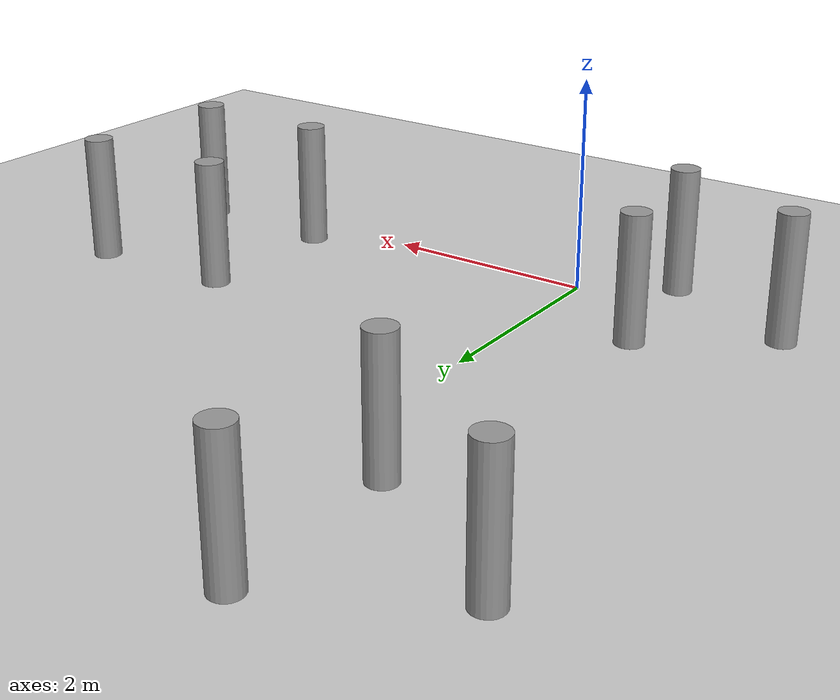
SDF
<sdf version="1.7">
 <world name="default">
  <light name="sun" type="directional">
   <pose>0 0 10 0 -0 0</pose>
   <diffuse>0.8 0.8 0.8 1</diffuse>
   <specular>0.2 0.2 0.2 1</specular>
   <attenuation>
    <range>1000</range>
    <constant>0.9</constant>
    <linear>0.01</linear>
    <quadratic>0.001</quadratic>
   </attenuation>
   <direction>-0.5 0.1 -0.9</direction>
   <spot><inner_angle>0</inner_angle><outer_angle>0</outer_angle><falloff>0</falloff></spot>
  </light>
  <model name="ground_plane">
   <static>1</static>
   <link name="link">
    <collision name="collision">
     <geometry><plane><normal>0 0 1</normal><size>100 100</size></plane></geometry>
     <surface>
      <contact><collide_bitmask>65535</collide_bitmask></contact>
      <friction><ode><mu>100</mu><mu2>50</mu2></ode></friction>
     </surface>
    </collision>
    <visual name="visual">
     <cast_shadows>0</cast_shadows>
     <geometry><plane><normal>0 0 1</normal><size>100 100</size></plane></geometry>
     <material>
      <script><uri>file://media/materials/scripts/gazebo.material</uri><name>Gazebo/Grey</name></script>
     </material>
    </visual>
   </link>
  </model>
  <gravity>0 0 -9.8</gravity>
  <magnetic_field>6e-06 2.3e-05 -4.2e-05</magnetic_field>
  <atmosphere type="adiabatic"/>
  <physics type="ode">
   <max_step_size>0.001</max_step_size>
   <real_time_factor>1</real_time_factor>
   <real_time_update_rate>1000</real_time_update_rate>
  </physics>
  <scene><ambient>0.4 0.4 0.4 1</ambient><background>0.7 0.7 0.7 1</background><shadows>1</shadows></scene>
  <spherical_coordinates>
   <surface_model>EARTH_WGS84</surface_model>
   <latitude_deg>0</latitude_deg>
   <longitude_deg>0</longitude_deg>
   <elevation>0</elevation>
   <heading_deg>0</heading_deg>
  </spherical_coordinates>
  <model name="smaller_cylinder">
   <model name="smaller_cylinder_1">
    <link name="link">
     <inertial>
      <mass>0.0872829</mass>
      <inertia>
       <ixx>0.0108064</ixx>
       <ixy>0</ixy>
       <ixz>0</ixz>
       <iyy>0.0108064</iyy>
       <iyz>0</iyz>
       <izz>0.000796093</izz>
      </inertia>
     </inertial>
     <visual name="visual">
      <geometry><cylinder><radius>0.135062</radius><length>1.19624</length></cylinder></geometry>
      <material>
       <script><name>Gazebo/Grey</name><uri>file://media/materials/scripts/gazebo.material</uri></script>
       <shader type="pixel"/>
      </material>
     </visual>
     <collision name="collision">
      <geometry><cylinder><radius>0.135062</radius><length>1.19624</length></cylinder></geometry>
      <surface>
       <friction>
        <ode><mu>1</mu><mu2>1</mu2><fdir1>0 0 0</fdir1><slip1>0</slip1><slip2>0</slip2></ode>
        <torsional>
         <coefficient>1</coefficient>
         <patch_radius>0</patch_radius>
         <surface_radius>0</surface_radius>
         <use_patch_radius>1</use_patch_radius>
         <ode><slip>0</slip></ode>
        </torsional>
       </friction>
       <bounce><restitution_coefficient>0</restitution_coefficient><threshold>1e+06</threshold></bounce>
       <contact>
        <collide_without_contact>0</collide_without_contact>
        <collide_without_contact_bitmask>1</collide_without_contact_bitmask>
        <collide_bitmask>1</collide_bitmask>
        <ode>
         <soft_cfm>0</soft_cfm>
         <soft_erp>0.2</soft_erp>
         <kp>1e+13</kp>
         <kd>1</kd>
         <max_vel>0.01</max_vel>
         <min_depth>0</min_depth>
        </ode>
        <bullet>
         <split_impulse>1</split_impulse>
         <split_impulse_penetration_threshold>-0.01</split_impulse_penetration_threshold>
         <soft_cfm>0</soft_cfm>
         <soft_erp>0.2</soft_erp>
         <kp>1e+13</kp>
         <kd>1</kd>
        </bullet>
       </contact>
      </surface>
     </collision>
    </link>
    <static>1</static>
    <pose>0.044198 -0.101528 0 0 -0 0</pose>
   </model>
   <static>1</static>
   <allow_auto_disable>0</allow_auto_disable>
   <pose>-0.834606 -0.386835 0.598119 0 -0 0</pose>
  </model>
  <model name="smaller_cylinder_0">
   <model name="smaller_cylinder_1">
    <link name="link">
     <inertial>
      <mass>0.0872829</mass>
      <inertia>
       <ixx>0.0108064</ixx>
       <ixy>0</ixy>
       <ixz>0</ixz>
       <iyy>0.0108064</iyy>
       <iyz>0</iyz>
       <izz>0.000796093</izz>
      </inertia>
     </inertial>
     <visual name="visual">
      <geometry><cylinder><radius>0.135062</radius><length>1.19624</length></cylinder></geometry>
      <material>
       <script><name>Gazebo/Grey</name><uri>file://media/materials/scripts/gazebo.material</uri></script>
       <shader type="pixel"/>
      </material>
     </visual>
     <collision name="collision">
      <geometry><cylinder><radius>0.135062</radius><length>1.19624</length></cylinder></geometry>
      <surface>
       <friction>
        <ode><mu>1</mu><mu2>1</mu2><fdir1>0 0 0</fdir1><slip1>0</slip1><slip2>0</slip2></ode>
        <torsional>
         <coefficient>1</coefficient>
         <patch_radius>0</patch_radius>
         <surface_radius>0</surface_radius>
         <use_patch_radius>1</use_patch_radius>
         <ode><slip>0</slip></ode>
        </torsional>
       </friction>
       <bounce><restitution_coefficient>0</restitution_coefficient><threshold>1e+06</threshold></bounce>
       <contact>
        <collide_without_contact>0</collide_without_contact>
        <collide_without_contact_bitmask>1</collide_without_contact_bitmask>
        <collide_bitmask>1</collide_bitmask>
        <ode>
         <soft_cfm>0</soft_cfm>
         <soft_erp>0.2</soft_erp>
         <kp>1e+13</kp>
         <kd>1</kd>
         <max_vel>0.01</max_vel>
         <min_depth>0</min_depth>
        </ode>
        <bullet>
         <split_impulse>1</split_impulse>
         <split_impulse_penetration_threshold>-0.01</split_impulse_penetration_threshold>
         <soft_cfm>0</soft_cfm>
         <soft_erp>0.2</soft_erp>
         <kp>1e+13</kp>
         <kd>1</kd>
        </bullet>
       </contact>
      </surface>
     </collision>
    </link>
    <static>1</static>
    <pose>0.044198 -0.101528 0 0 -0 0</pose>
   </model>
   <static>1</static>
   <allow_auto_disable>0</allow_auto_disable>
   <pose>-1.00971 0.92644 0.598112 0 -0 0</pose>
  </model>
  <model name="smaller_cylinder_2">
   <model name="smaller_cylinder_1">
    <link name="link">
     <inertial>
      <mass>0.0872829</mass>
      <inertia>
       <ixx>0.0108064</ixx>
       <ixy>0</ixy>
       <ixz>0</ixz>
       <iyy>0.0108064</iyy>
       <iyz>0</iyz>
       <izz>0.000796093</izz>
      </inertia>
     </inertial>
     <visual name="visual">
      <geometry><cylinder><radius>0.135062</radius><length>1.19624</length></cylinder></geometry>
      <material>
       <script><name>Gazebo/Grey</name><uri>file://media/materials/scripts/gazebo.material</uri></script>
       <shader type="pixel"/>
      </material>
     </visual>
     <collision name="collision">
      <geometry><cylinder><radius>0.135062</radius><length>1.19624</length></cylinder></geometry>
      <surface>
       <friction>
        <ode><mu>1</mu><mu2>1</mu2><fdir1>0 0 0</fdir1><slip1>0</slip1><slip2>0</slip2></ode>
        <torsional>
         <coefficient>1</coefficient>
         <patch_radius>0</patch_radius>
         <surface_radius>0</surface_radius>
         <use_patch_radius>1</use_patch_radius>
         <ode><slip>0</slip></ode>
        </torsional>
       </friction>
       <bounce><restitution_coefficient>0</restitution_coefficient><threshold>1e+06</threshold></bounce>
       <contact>
        <collide_without_contact>0</collide_without_contact>
        <collide_without_contact_bitmask>1</collide_without_contact_bitmask>
        <collide_bitmask>1</collide_bitmask>
        <ode>
         <soft_cfm>0</soft_cfm>
         <soft_erp>0.2</soft_erp>
         <kp>1e+13</kp>
         <kd>1</kd>
         <max_vel>0.01</max_vel>
         <min_depth>0</min_depth>
        </ode>
        <bullet>
         <split_impulse>1</split_impulse>
         <split_impulse_penetration_threshold>-0.01</split_impulse_penetration_threshold>
         <soft_cfm>0</soft_cfm>
         <soft_erp>0.2</soft_erp>
         <kp>1e+13</kp>
         <kd>1</kd>
        </bullet>
       </contact>
      </surface>
     </collision>
    </link>
    <static>1</static>
    <pose>0.044198 -0.101528 0 0 -0 0</pose>
   </model>
   <static>1</static>
   <allow_auto_disable>0</allow_auto_disable>
   <pose>-2.07335 0.175208 0.598119 0 -0 0</pose>
  </model>
  <model name="smaller_cylinder_3">
   <model name="smaller_cylinder_1">
    <link name="link">
     <inertial>
      <mass>0.0872829</mass>
      <inertia>
       <ixx>0.0108064</ixx>
       <ixy>0</ixy>
       <ixz>0</ixz>
       <iyy>0.0108064</iyy>
       <iyz>0</iyz>
       <izz>0.000796093</izz>
      </inertia>
     </inertial>
     <visual name="visual">
      <geometry><cylinder><radius>0.135062</radius><length>1.19624</length></cylinder></geometry>
      <material>
       <script><name>Gazebo/Grey</name><uri>file://media/materials/scripts/gazebo.material</uri></script>
       <shader type="pixel"/>
      </material>
     </visual>
     <collision name="collision">
      <geometry><cylinder><radius>0.135062</radius><length>1.19624</length></cylinder></geometry>
      <surface>
       <friction>
        <ode><mu>1</mu><mu2>1</mu2><fdir1>0 0 0</fdir1><slip1>0</slip1><slip2>0</slip2></ode>
        <torsional>
         <coefficient>1</coefficient>
         <patch_radius>0</patch_radius>
         <surface_radius>0</surface_radius>
         <use_patch_radius>1</use_patch_radius>
         <ode><slip>0</slip></ode>
        </torsional>
       </friction>
       <bounce><restitution_coefficient>0</restitution_coefficient><threshold>1e+06</threshold></bounce>
       <contact>
        <collide_without_contact>0</collide_without_contact>
        <collide_without_contact_bitmask>1</collide_without_contact_bitmask>
        <collide_bitmask>1</collide_bitmask>
        <ode>
         <soft_cfm>0</soft_cfm>
         <soft_erp>0.2</soft_erp>
         <kp>1e+13</kp>
         <kd>1</kd>
         <max_vel>0.01</max_vel>
         <min_depth>0</min_depth>
        </ode>
        <bullet>
         <split_impulse>1</split_impulse>
         <split_impulse_penetration_threshold>-0.01</split_impulse_penetration_threshold>
         <soft_cfm>0</soft_cfm>
         <soft_erp>0.2</soft_erp>
         <kp>1e+13</kp>
         <kd>1</kd>
        </bullet>
       </contact>
      </surface>
     </collision>
    </link>
    <static>1</static>
    <pose>0.044198 -0.101528 0 0 -0 0</pose>
   </model>
   <static>1</static>
   <allow_auto_disable>0</allow_auto_disable>
   <pose>-0.687575 5.64178 0.598119 0 -0 0</pose>
  </model>
  <model name="smaller_cylinder_4">
   <model name="smaller_cylinder_1">
    <link name="link">
     <inertial>
      <mass>0.0872829</mass>
      <inertia>
       <ixx>0.0108064</ixx>
       <ixy>0</ixy>
       <ixz>0</ixz>
       <iyy>0.0108064</iyy>
       <iyz>0</iyz>
       <izz>0.000796093</izz>
      </inertia>
     </inertial>
     <visual name="visual">
      <geometry><cylinder><radius>0.135062</radius><length>1.19624</length></cylinder></geometry>
      <material>
       <script><name>Gazebo/Grey</name><uri>file://media/materials/scripts/gazebo.material</uri></script>
       <shader type="pixel"/>
      </material>
     </visual>
     <collision name="collision">
      <geometry><cylinder><radius>0.135062</radius><length>1.19624</length></cylinder></geometry>
      <surface>
       <friction>
        <ode><mu>1</mu><mu2>1</mu2><fdir1>0 0 0</fdir1><slip1>0</slip1><slip2>0</slip2></ode>
        <torsional>
         <coefficient>1</coefficient>
         <patch_radius>0</patch_radius>
         <surface_radius>0</surface_radius>
         <use_patch_radius>1</use_patch_radius>
         <ode><slip>0</slip></ode>
        </torsional>
       </friction>
       <bounce><restitution_coefficient>0</restitution_coefficient><threshold>1e+06</threshold></bounce>
       <contact>
        <collide_without_contact>0</collide_without_contact>
        <collide_without_contact_bitmask>1</collide_without_contact_bitmask>
        <collide_bitmask>1</collide_bitmask>
        <ode>
         <soft_cfm>0</soft_cfm>
         <soft_erp>0.2</soft_erp>
         <kp>1e+13</kp>
         <kd>1</kd>
         <max_vel>0.01</max_vel>
         <min_depth>0</min_depth>
        </ode>
        <bullet>
         <split_impulse>1</split_impulse>
         <split_impulse_penetration_threshold>-0.01</split_impulse_penetration_threshold>
         <soft_cfm>0</soft_cfm>
         <soft_erp>0.2</soft_erp>
         <kp>1e+13</kp>
         <kd>1</kd>
        </bullet>
       </contact>
      </surface>
     </collision>
    </link>
    <static>1</static>
    <pose>0.044198 -0.101528 0 0 -0 0</pose>
   </model>
   <static>1</static>
   <allow_auto_disable>0</allow_auto_disable>
   <pose>-0.675037 4.01863 0.598119 0 -0 0</pose>
  </model>
  <model name="smaller_cylinder_5">
   <model name="smaller_cylinder_1">
    <link name="link">
     <inertial>
      <mass>0.0872829</mass>
      <inertia>
       <ixx>0.0108064</ixx>
       <ixy>0</ixy>
       <ixz>0</ixz>
       <iyy>0.0108064</iyy>
       <iyz>0</iyz>
       <izz>0.000796093</izz>
      </inertia>
     </inertial>
     <visual name="visual">
      <geometry><cylinder><radius>0.135062</radius><length>1.19624</length></cylinder></geometry>
      <material>
       <script><name>Gazebo/Grey</name><uri>file://media/materials/scripts/gazebo.material</uri></script>
       <shader type="pixel"/>
      </material>
     </visual>
     <collision name="collision">
      <geometry><cylinder><radius>0.135062</radius><length>1.19624</length></cylinder></geometry>
      <surface>
       <friction>
        <ode><mu>1</mu><mu2>1</mu2><fdir1>0 0 0</fdir1><slip1>0</slip1><slip2>0</slip2></ode>
        <torsional>
         <coefficient>1</coefficient>
         <patch_radius>0</patch_radius>
         <surface_radius>0</surface_radius>
         <use_patch_radius>1</use_patch_radius>
         <ode><slip>0</slip></ode>
        </torsional>
       </friction>
       <bounce><restitution_coefficient>0</restitution_coefficient><threshold>1e+06</threshold></bounce>
       <contact>
        <collide_without_contact>0</collide_without_contact>
        <collide_without_contact_bitmask>1</collide_without_contact_bitmask>
        <collide_bitmask>1</collide_bitmask>
        <ode>
         <soft_cfm>0</soft_cfm>
         <soft_erp>0.2</soft_erp>
         <kp>1e+13</kp>
         <kd>1</kd>
         <max_vel>0.01</max_vel>
         <min_depth>0</min_depth>
        </ode>
        <bullet>
         <split_impulse>1</split_impulse>
         <split_impulse_penetration_threshold>-0.01</split_impulse_penetration_threshold>
         <soft_cfm>0</soft_cfm>
         <soft_erp>0.2</soft_erp>
         <kp>1e+13</kp>
         <kd>1</kd>
        </bullet>
       </contact>
      </surface>
     </collision>
    </link>
    <static>1</static>
    <pose>0.044198 -0.101528 0 0 -0 0</pose>
   </model>
   <static>1</static>
   <allow_auto_disable>0</allow_auto_disable>
   <pose>-2.08928 4.85086 0.598119 0 -0 0</pose>
  </model>
  <model name="smaller_cylinder_0_clone">
   <model name="smaller_cylinder_1">
    <link name="link">
     <inertial>
      <mass>0.0872829</mass>
      <inertia>
       <ixx>0.0108064</ixx>
       <ixy>0</ixy>
       <ixz>0</ixz>
       <iyy>0.0108064</iyy>
       <iyz>0</iyz>
       <izz>0.000796093</izz>
      </inertia>
     </inertial>
     <visual name="visual">
      <geometry><cylinder><radius>0.135062</radius><length>1.19624</length></cylinder></geometry>
      <material>
       <script><name>Gazebo/Grey</name><uri>file://media/materials/scripts/gazebo.material</uri></script>
       <shader type="pixel"/>
      </material>
     </visual>
     <collision name="collision">
      <geometry><cylinder><radius>0.135062</radius><length>1.19624</length></cylinder></geometry>
      <surface>
       <friction>
        <ode><mu>1</mu><mu2>1</mu2><fdir1>0 0 0</fdir1><slip1>0</slip1><slip2>0</slip2></ode>
        <torsional>
         <coefficient>1</coefficient>
         <patch_radius>0</patch_radius>
         <surface_radius>0</surface_radius>
         <use_patch_radius>1</use_patch_radius>
         <ode><slip>0</slip></ode>
        </torsional>
       </friction>
       <bounce><restitution_coefficient>0</restitution_coefficient><threshold>1e+06</threshold></bounce>
       <contact>
        <collide_without_contact>0</collide_without_contact>
        <collide_without_contact_bitmask>1</collide_without_contact_bitmask>
        <collide_bitmask>1</collide_bitmask>
        <ode>
         <soft_cfm>0</soft_cfm>
         <soft_erp>0.2</soft_erp>
         <kp>1e+13</kp>
         <kd>1</kd>
         <max_vel>0.01</max_vel>
         <min_depth>0</min_depth>
        </ode>
        <bullet>
         <split_impulse>1</split_impulse>
         <split_impulse_penetration_threshold>-0.01</split_impulse_penetration_threshold>
         <soft_cfm>0</soft_cfm>
         <soft_erp>0.2</soft_erp>
         <kp>1e+13</kp>
         <kd>1</kd>
        </bullet>
       </contact>
      </surface>
     </collision>
    </link>
    <static>1</static>
    <pose>0.044198 -0.101528 0 0 -0 0</pose>
   </model>
   <static>1</static>
   <allow_auto_disable>0</allow_auto_disable>
   <pose>4.22158 2.0063 0.598112 0 -0 0</pose>
  </model>
  <model name="smaller_cylinder_0_clone_0">
   <model name="smaller_cylinder_1">
    <link name="link">
     <inertial>
      <mass>0.0872829</mass>
      <inertia>
       <ixx>0.0108064</ixx>
       <ixy>0</ixy>
       <ixz>0</ixz>
       <iyy>0.0108064</iyy>
       <iyz>0</iyz>
       <izz>0.000796093</izz>
      </inertia>
     </inertial>
     <visual name="visual">
      <geometry><cylinder><radius>0.135062</radius><length>1.19624</length></cylinder></geometry>
      <material>
       <script><name>Gazebo/Grey</name><uri>file://media/materials/scripts/gazebo.material</uri></script>
       <shader type="pixel"/>
      </material>
     </visual>
     <collision name="collision">
      <geometry><cylinder><radius>0.135062</radius><length>1.19624</length></cylinder></geometry>
      <surface>
       <friction>
        <ode><mu>1</mu><mu2>1</mu2><fdir1>0 0 0</fdir1><slip1>0</slip1><slip2>0</slip2></ode>
        <torsional>
         <coefficient>1</coefficient>
         <patch_radius>0</patch_radius>
         <surface_radius>0</surface_radius>
         <use_patch_radius>1</use_patch_radius>
         <ode><slip>0</slip></ode>
        </torsional>
       </friction>
       <bounce><restitution_coefficient>0</restitution_coefficient><threshold>1e+06</threshold></bounce>
       <contact>
        <collide_without_contact>0</collide_without_contact>
        <collide_without_contact_bitmask>1</collide_without_contact_bitmask>
        <collide_bitmask>1</collide_bitmask>
        <ode>
         <soft_cfm>0</soft_cfm>
         <soft_erp>0.2</soft_erp>
         <kp>1e+13</kp>
         <kd>1</kd>
         <max_vel>0.01</max_vel>
         <min_depth>0</min_depth>
        </ode>
        <bullet>
         <split_impulse>1</split_impulse>
         <split_impulse_penetration_threshold>-0.01</split_impulse_penetration_threshold>
         <soft_cfm>0</soft_cfm>
         <soft_erp>0.2</soft_erp>
         <kp>1e+13</kp>
         <kd>1</kd>
        </bullet>
       </contact>
      </surface>
     </collision>
    </link>
    <static>1</static>
    <pose>0.044198 -0.101528 0 0 -0 0</pose>
   </model>
   <static>1</static>
   <allow_auto_disable>0</allow_auto_disable>
   <pose>4.19071 0.46105 0.598112 0 -0 0</pose>
  </model>
  <model name="smaller_cylinder_0_clone_1">
   <model name="smaller_cylinder_1">
    <link name="link">
     <inertial>
      <mass>0.0872829</mass>
      <inertia>
       <ixx>0.0108064</ixx>
       <ixy>0</ixy>
       <ixz>0</ixz>
       <iyy>0.0108064</iyy>
       <iyz>0</iyz>
       <izz>0.000796093</izz>
      </inertia>
     </inertial>
     <visual name="visual">
      <geometry><cylinder><radius>0.135062</radius><length>1.19624</length></cylinder></geometry>
      <material>
       <script><name>Gazebo/Grey</name><uri>file://media/materials/scripts/gazebo.material</uri></script>
       <shader type="pixel"/>
      </material>
     </visual>
     <collision name="collision">
      <geometry><cylinder><radius>0.135062</radius><length>1.19624</length></cylinder></geometry>
      <surface>
       <friction>
        <ode><mu>1</mu><mu2>1</mu2><fdir1>0 0 0</fdir1><slip1>0</slip1><slip2>0</slip2></ode>
        <torsional>
         <coefficient>1</coefficient>
         <patch_radius>0</patch_radius>
         <surface_radius>0</surface_radius>
         <use_patch_radius>1</use_patch_radius>
         <ode><slip>0</slip></ode>
        </torsional>
       </friction>
       <bounce><restitution_coefficient>0</restitution_coefficient><threshold>1e+06</threshold></bounce>
       <contact>
        <collide_without_contact>0</collide_without_contact>
        <collide_without_contact_bitmask>1</collide_without_contact_bitmask>
        <collide_bitmask>1</collide_bitmask>
        <ode>
         <soft_cfm>0</soft_cfm>
         <soft_erp>0.2</soft_erp>
         <kp>1e+13</kp>
         <kd>1</kd>
         <max_vel>0.01</max_vel>
         <min_depth>0</min_depth>
        </ode>
        <bullet>
         <split_impulse>1</split_impulse>
         <split_impulse_penetration_threshold>-0.01</split_impulse_penetration_threshold>
         <soft_cfm>0</soft_cfm>
         <soft_erp>0.2</soft_erp>
         <kp>1e+13</kp>
         <kd>1</kd>
        </bullet>
       </contact>
      </surface>
     </collision>
    </link>
    <static>1</static>
    <pose>0.044198 -0.101528 0 0 -0 0</pose>
   </model>
   <static>1</static>
   <allow_auto_disable>0</allow_auto_disable>
   <pose>2.82852 1.94528 0.598112 0 -0 0</pose>
  </model>
  <model name="smaller_cylinder_0_clone_2">
   <model name="smaller_cylinder_1">
    <link name="link">
     <inertial>
      <mass>0.0872829</mass>
      <inertia>
       <ixx>0.0108064</ixx>
       <ixy>0</ixy>
       <ixz>0</ixz>
       <iyy>0.0108064</iyy>
       <iyz>0</iyz>
       <izz>0.000796093</izz>
      </inertia>
     </inertial>
     <visual name="visual">
      <geometry><cylinder><radius>0.135062</radius><length>1.19624</length></cylinder></geometry>
      <material>
       <script><name>Gazebo/Grey</name><uri>file://media/materials/scripts/gazebo.material</uri></script>
       <shader type="pixel"/>
      </material>
     </visual>
     <collision name="collision">
      <geometry><cylinder><radius>0.135062</radius><length>1.19624</length></cylinder></geometry>
      <surface>
       <friction>
        <ode><mu>1</mu><mu2>1</mu2><fdir1>0 0 0</fdir1><slip1>0</slip1><slip2>0</slip2></ode>
        <torsional>
         <coefficient>1</coefficient>
         <patch_radius>0</patch_radius>
         <surface_radius>0</surface_radius>
         <use_patch_radius>1</use_patch_radius>
         <ode><slip>0</slip></ode>
        </torsional>
       </friction>
       <bounce><restitution_coefficient>0</restitution_coefficient><threshold>1e+06</threshold></bounce>
       <contact>
        <collide_without_contact>0</collide_without_contact>
        <collide_without_contact_bitmask>1</collide_without_contact_bitmask>
        <collide_bitmask>1</collide_bitmask>
        <ode>
         <soft_cfm>0</soft_cfm>
         <soft_erp>0.2</soft_erp>
         <kp>1e+13</kp>
         <kd>1</kd>
         <max_vel>0.01</max_vel>
         <min_depth>0</min_depth>
        </ode>
        <bullet>
         <split_impulse>1</split_impulse>
         <split_impulse_penetration_threshold>-0.01</split_impulse_penetration_threshold>
         <soft_cfm>0</soft_cfm>
         <soft_erp>0.2</soft_erp>
         <kp>1e+13</kp>
         <kd>1</kd>
        </bullet>
       </contact>
      </surface>
     </collision>
    </link>
    <static>1</static>
    <pose>0.044198 -0.101528 0 0 -0 0</pose>
   </model>
   <static>1</static>
   <allow_auto_disable>0</allow_auto_disable>
   <pose>2.81832 0.488492 0.598112 0 -0 0</pose>
  </model>
 </world>
</sdf>
